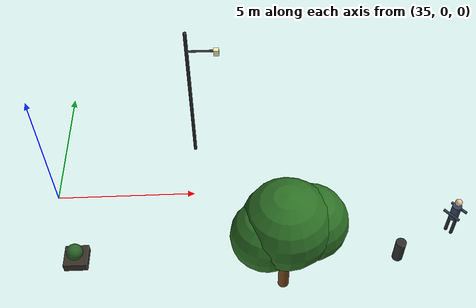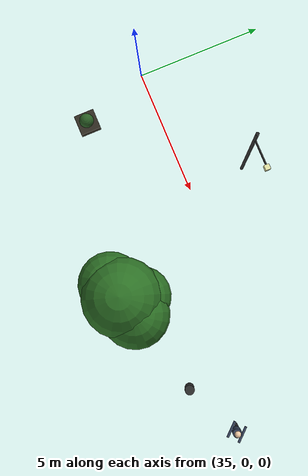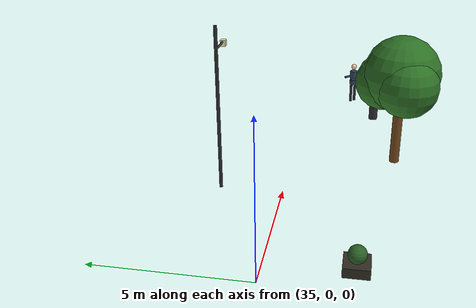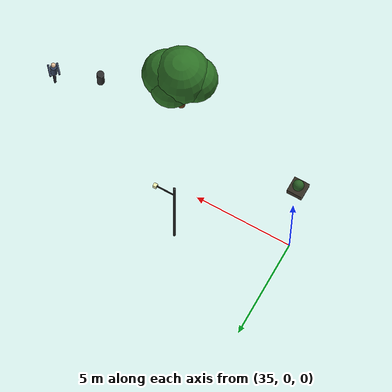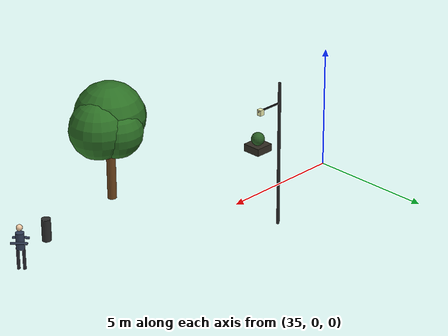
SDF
<sdf version="1.6">
 <world name="sidewalk_avenue">
  <model name="tree_4">
   <pose>43.000 -3.850 0.000 0.000 0.000 0.000</pose>
   <static>true</static>
   <link name="link">
    <collision name="cylinder_trunk_collision">
     <pose>0.000 0.000 1.500 0.000 0.000 0.000</pose>
     <geometry><cylinder><radius>0.180</radius><length>3.000</length></cylinder></geometry>
    </collision>
    <visual name="cylinder_trunk_visual">
     <pose>0.000 0.000 1.500 0.000 0.000 0.000</pose>
     <geometry><cylinder><radius>0.180</radius><length>3.000</length></cylinder></geometry>
     <material>
      <ambient>0.360 0.224 0.096 1.000</ambient>
      <diffuse>0.450 0.280 0.120 1.000</diffuse>
      <specular>0.050 0.050 0.050 1.000</specular>
     </material>
    </visual>
    <visual name="canopy_visual_0">
     <pose>0.000 0.000 3.480 0.000 0.000 0.000</pose>
     <geometry><sphere><radius>1.400</radius></sphere></geometry>
     <material>
      <ambient>0.144 0.360 0.120 1.000</ambient>
      <diffuse>0.180 0.450 0.150 1.000</diffuse>
      <specular>0.050 0.050 0.050 1.000</specular>
     </material>
    </visual>
    <visual name="canopy_visual_1">
     <pose>0.700 0.200 3.240 0.000 0.000 0.000</pose>
     <geometry><sphere><radius>1.190</radius></sphere></geometry>
     <material>
      <ambient>0.144 0.360 0.120 1.000</ambient>
      <diffuse>0.180 0.450 0.150 1.000</diffuse>
      <specular>0.050 0.050 0.050 1.000</specular>
     </material>
    </visual>
    <visual name="canopy_visual_2">
     <pose>-0.600 -0.200 3.240 0.000 0.000 0.000</pose>
     <geometry><sphere><radius>1.120</radius></sphere></geometry>
     <material>
      <ambient>0.144 0.360 0.120 1.000</ambient>
      <diffuse>0.180 0.450 0.150 1.000</diffuse>
      <specular>0.050 0.050 0.050 1.000</specular>
     </material>
    </visual>
    <visual name="canopy_visual_3">
     <pose>0.200 0.600 3.120 0.000 0.000 0.000</pose>
     <geometry><sphere><radius>1.050</radius></sphere></geometry>
     <material>
      <ambient>0.144 0.360 0.120 1.000</ambient>
      <diffuse>0.180 0.450 0.150 1.000</diffuse>
      <specular>0.050 0.050 0.050 1.000</specular>
     </material>
    </visual>
    <collision name="canopy_collision">
     <pose>0.000 0.000 3.360 0.000 0.000 0.000</pose>
     <geometry><sphere><radius>1.680</radius></sphere></geometry>
    </collision>
   </link>
   <plugin filename="gz-sim-label-system" name="gz::sim::systems::Label"><label>9</label></plugin>
  </model>
  <model name="lamp_2">
   <pose>40.000 2.200 0.000 0.000 0.000 0.000</pose>
   <static>true</static>
   <link name="link">
    <collision name="pole_collision">
     <pose>0.000 0.000 2.900 0.000 0.000 0.000</pose>
     <geometry><cylinder><radius>0.060</radius><length>5.800</length></cylinder></geometry>
    </collision>
    <visual name="pole_visual">
     <pose>0.000 0.000 2.900 0.000 0.000 0.000</pose>
     <geometry><cylinder><radius>0.060</radius><length>5.800</length></cylinder></geometry>
     <material>
      <ambient>0.120 0.120 0.120 1.000</ambient>
      <diffuse>0.150 0.150 0.150 1.000</diffuse>
      <specular>0.050 0.050 0.050 1.000</specular>
     </material>
    </visual>
    <visual name="arm_visual">
     <pose>0.550 0.000 5.000 0.000 0.000 0.000</pose>
     <geometry><box><size>1.100 0.050 0.050</size></box></geometry>
     <material>
      <ambient>0.120 0.120 0.120 1.000</ambient>
      <diffuse>0.150 0.150 0.150 1.000</diffuse>
      <specular>0.050 0.050 0.050 1.000</specular>
     </material>
    </visual>
    <visual name="lamp_visual">
     <pose>1.000 0.000 4.950 0.000 0.000 0.000</pose>
     <geometry><box><size>0.180 0.180 0.220</size></box></geometry>
     <material>
      <ambient>0.760 0.760 0.560 1.000</ambient>
      <diffuse>0.950 0.950 0.700 1.000</diffuse>
      <specular>0.050 0.050 0.050 1.000</specular>
     </material>
    </visual>
   </link>
   <plugin filename="gz-sim-label-system" name="gz::sim::systems::Label"><label>6</label></plugin>
  </model>
  <model name="trash_2">
   <pose>47.000 -3.000 0.000 0.000 0.000 0.000</pose>
   <static>true</static>
   <link name="link">
    <collision name="bin_collision">
     <pose>0.000 0.000 0.450 0.000 0.000 0.000</pose>
     <geometry><cylinder><radius>0.180</radius><length>0.900</length></cylinder></geometry>
    </collision>
    <visual name="bin_visual">
     <pose>0.000 0.000 0.450 0.000 0.000 0.000</pose>
     <geometry><cylinder><radius>0.180</radius><length>0.900</length></cylinder></geometry>
     <material>
      <ambient>0.144 0.144 0.144 1.000</ambient>
      <diffuse>0.180 0.180 0.180 1.000</diffuse>
      <specular>0.050 0.050 0.050 1.000</specular>
     </material>
    </visual>
   </link>
   <plugin filename="gz-sim-label-system" name="gz::sim::systems::Label"><label>3</label></plugin>
  </model>
  <model name="person_2">
   <pose>49.000 -2.000 0.000 0.000 0.000 2.300</pose>
   <static>true</static>
   <link name="link">
    <collision name="leg0_collision">
     <pose>-0.110 0.000 0.430 0.000 0.000 0.000</pose>
     <geometry><cylinder><radius>0.060</radius><length>0.860</length></cylinder></geometry>
    </collision>
    <visual name="leg0_visual">
     <pose>-0.110 0.000 0.430 0.000 0.000 0.000</pose>
     <geometry><cylinder><radius>0.060</radius><length>0.860</length></cylinder></geometry>
     <material>
      <ambient>0.120 0.120 0.144 1.000</ambient>
      <diffuse>0.150 0.150 0.180 1.000</diffuse>
      <specular>0.050 0.050 0.050 1.000</specular>
     </material>
    </visual>
    <collision name="leg1_collision">
     <pose>0.110 0.000 0.430 0.000 0.000 0.000</pose>
     <geometry><cylinder><radius>0.060</radius><length>0.860</length></cylinder></geometry>
    </collision>
    <visual name="leg1_visual">
     <pose>0.110 0.000 0.430 0.000 0.000 0.000</pose>
     <geometry><cylinder><radius>0.060</radius><length>0.860</length></cylinder></geometry>
     <material>
      <ambient>0.120 0.120 0.144 1.000</ambient>
      <diffuse>0.150 0.150 0.180 1.000</diffuse>
      <specular>0.050 0.050 0.050 1.000</specular>
     </material>
    </visual>
    <collision name="torso_collision">
     <pose>0.000 0.000 1.150 0.000 0.000 0.000</pose>
     <geometry><cylinder><radius>0.160</radius><length>0.650</length></cylinder></geometry>
    </collision>
    <visual name="torso_visual">
     <pose>0.000 0.000 1.150 0.000 0.000 0.000</pose>
     <geometry><cylinder><radius>0.160</radius><length>0.650</length></cylinder></geometry>
     <material>
      <ambient>0.160 0.200 0.280 1.000</ambient>
      <diffuse>0.200 0.250 0.350 1.000</diffuse>
      <specular>0.050 0.050 0.050 1.000</specular>
     </material>
    </visual>
    <collision name="head_collision">
     <pose>0.000 0.000 1.680 0.000 0.000 0.000</pose>
     <geometry><sphere><radius>0.120</radius></sphere></geometry>
    </collision>
    <visual name="head_visual">
     <pose>0.000 0.000 1.680 0.000 0.000 0.000</pose>
     <geometry><sphere><radius>0.120</radius></sphere></geometry>
     <material>
      <ambient>0.760 0.640 0.520 1.000</ambient>
      <diffuse>0.950 0.800 0.650 1.000</diffuse>
      <specular>0.050 0.050 0.050 1.000</specular>
     </material>
    </visual>
    <collision name="arm0_collision">
     <pose>0.000 -0.220 1.160 0.000 1.571 0.000</pose>
     <geometry><cylinder><radius>0.045</radius><length>0.620</length></cylinder></geometry>
    </collision>
    <visual name="arm0_visual">
     <pose>0.000 -0.220 1.160 0.000 1.571 0.000</pose>
     <geometry><cylinder><radius>0.045</radius><length>0.620</length></cylinder></geometry>
     <material>
      <ambient>0.160 0.200 0.280 1.000</ambient>
      <diffuse>0.200 0.250 0.350 1.000</diffuse>
      <specular>0.050 0.050 0.050 1.000</specular>
     </material>
    </visual>
    <collision name="arm1_collision">
     <pose>0.000 0.220 1.160 0.000 1.571 0.000</pose>
     <geometry><cylinder><radius>0.045</radius><length>0.620</length></cylinder></geometry>
    </collision>
    <visual name="arm1_visual">
     <pose>0.000 0.220 1.160 0.000 1.571 0.000</pose>
     <geometry><cylinder><radius>0.045</radius><length>0.620</length></cylinder></geometry>
     <material>
      <ambient>0.160 0.200 0.280 1.000</ambient>
      <diffuse>0.200 0.250 0.350 1.000</diffuse>
      <specular>0.050 0.050 0.050 1.000</specular>
     </material>
    </visual>
   </link>
   <plugin filename="gz-sim-label-system" name="gz::sim::systems::Label"><label>12</label></plugin>
  </model>
  <model name="planter_2">
   <pose>36.000 -2.700 0.160 0.000 0.000 0.000</pose>
   <static>true</static>
   <link name="link">
    <collision name="collision"><geometry><box><size>0.800 0.800 0.320</size></box></geometry></collision>
    <visual name="visual">
     <geometry><box><size>0.800 0.800 0.320</size></box></geometry>
     <material>
      <ambient>0.160 0.144 0.112 1.000</ambient>
      <diffuse>0.200 0.180 0.140 1.000</diffuse>
      <specular>0.050 0.050 0.050 1.000</specular>
     </material>
    </visual>
   </link>
   <plugin filename="gz-sim-label-system" name="gz::sim::systems::Label"><label>3</label></plugin>
  </model>
  <model name="shrub_2">
   <pose>36.000 -2.700 0.550 0.000 0.000 0.000</pose>
   <static>true</static>
   <link name="link">
    <collision name="collision"><geometry><sphere><radius>0.280</radius></sphere></geometry></collision>
    <visual name="visual">
     <geometry><sphere><radius>0.280</radius></sphere></geometry>
     <material>
      <ambient>0.136 0.304 0.120 1.000</ambient>
      <diffuse>0.170 0.380 0.150 1.000</diffuse>
      <specular>0.050 0.050 0.050 1.000</specular>
     </material>
    </visual>
   </link>
   <plugin filename="gz-sim-label-system" name="gz::sim::systems::Label"><label>9</label></plugin>
  </model>
 </world>
</sdf>
